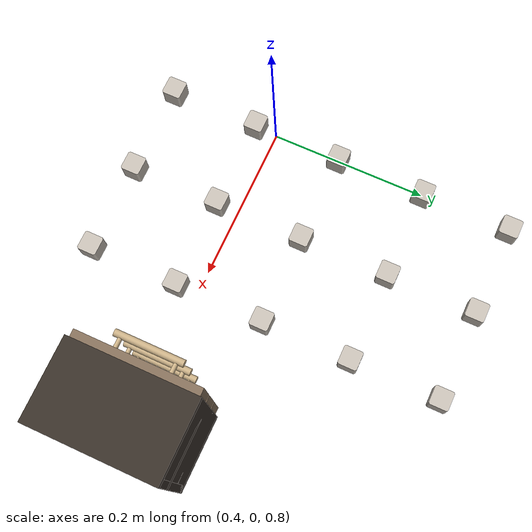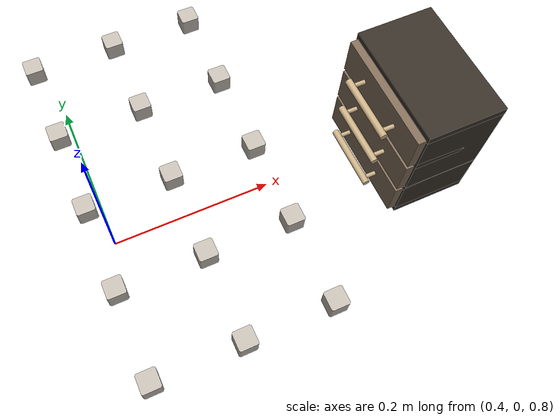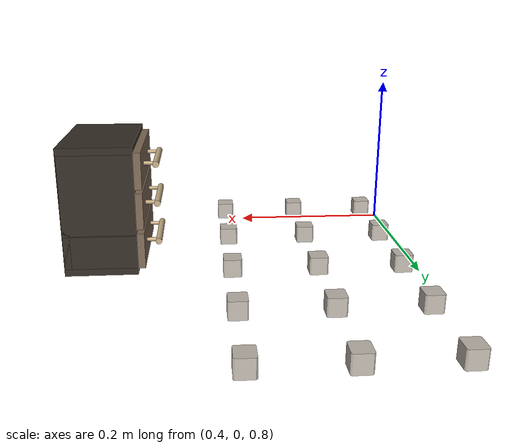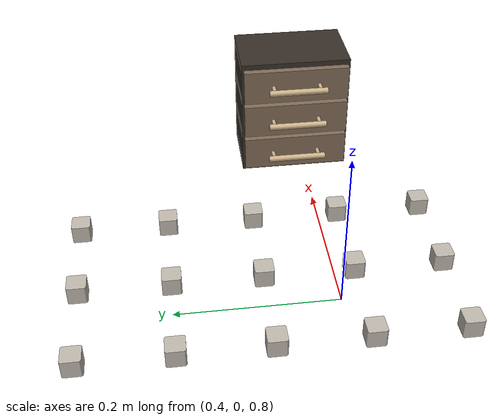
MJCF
<?xml version="1.0" encoding="utf-8"?>
<mujoco model="spell_and_stow_task">
  <compiler angle="radian" meshdir="../assets" texturedir="../assets" />
  <default>
    <default class="yam">
      <position inheritrange="1" />
      <joint frictionloss="0.1" axis="0 0 1" />
      <default class="dm4340">
        <joint armature="0.032" />
        <position kp="40" kv="2.5" forcerange="-28 28" />
      </default>
      <default class="dm4310">
        <joint armature="0.0018" />
        <position kp="10" kv="1" forcerange="-10 10" />
      </default>
      <default class="visual">
        <geom type="mesh" contype="0" conaffinity="0" density="0" group="2" material="black" />
      </default>
      <default class="collision">
        <geom group="3" type="capsule" friction="2.0 0.1 0.01" condim="4" />
        <default class="sphere_collision">
          <geom size="0.0006 0 0" type="sphere" rgba="1 0 0 1" friction="4.0 0.1 0.01" condim="4" solimp="0.998 0.998 0.001" solref="0.004 1" priority="2" />
        </default>
      </default>
      <default class="finger">
        <joint type="slide" armature="0.1" frictionloss="0.1" />
        <position ctrlrange="0.0 0.0495" kp="400" kv="14" inheritrange="0" />
      </default>
    </default>
    <default class="letter_block">
      <geom type="mesh" contype="0" conaffinity="0" density="0" group="1" />
    </default>
    <default class="letter_block_col">
      <geom type="box" size="0.0127 0.0127 0.0127" condim="4" friction="1.0 0.002 0.0002" solref="0.004 1" solimp="0.998 0.998 0.001" priority="1" mass="0.010" group="3" rgba="0 0 0 0" />
    </default>
    <default class="CMC_joint">
      <joint armature="0.0032" damping="4.20E-05" frictionloss="0.132" />
    </default>
    <default class="PCMC_joint">
      <joint armature="0.00012" damping="4.20E-05" frictionloss="0.012" />
    </default>
    <default class="MCP_joint">
      <joint armature="0.00265" damping="2.38E-05" frictionloss="0.07456" />
    </default>
    <default class="PIP_joint">
      <joint armature="0.0006" damping="4.06E-06" frictionloss="0.01276" />
    </default>
    <default class="DIP_joint">
      <joint armature="0.00042" damping="1.21E-06" frictionloss="0.00378738" />
    </default>
    <default class="elastomer_geom">
      <geom solref="0.004 1" friction="3.0 0.1 0.01" priority="2" condim="4" />
    </default>
    <default class="hand_bone">
      <geom friction="1.8 0.03 0.003" priority="2" condim="4" />
    </default>
  </default>
  <contact>
    <exclude body1="right_hand_C_MC" body2="right_thumb_CMC_VL" />
    <exclude body1="right_hand_C_MC" body2="right_hand_C_MC" />
    <exclude body1="right_hand_C_MC" body2="right_thumb_MC" />
    <exclude body1="right_thumb_MC" body2="right_thumb_MCP_VL" />
    <exclude body1="right_thumb_MC" body2="right_thumb_PP" />
    <exclude body1="right_thumb_MCP_VL" body2="right_thumb_PP" />
    <exclude body1="right_thumb_PP" body2="right_thumb_DP" />
    <exclude body1="right_hand_C_MC" body2="right_index_MCP_VL" />
    <exclude body1="right_hand_C_MC" body2="right_index_PP" />
    <exclude body1="right_index_MCP_VL" body2="right_index_PP" />
    <exclude body1="right_index_PP" body2="right_index_MP" />
    <exclude body1="right_index_MP" body2="right_index_DP" />
    <exclude body1="right_hand_C_MC" body2="right_middle_MCP_VL" />
    <exclude body1="right_hand_C_MC" body2="right_middle_PP" />
    <exclude body1="right_middle_MCP_VL" body2="right_middle_PP" />
    <exclude body1="right_middle_PP" body2="right_middle_MP" />
    <exclude body1="right_middle_MP" body2="right_middle_DP" />
    <exclude body1="right_hand_C_MC" body2="right_ring_MCP_VL" />
    <exclude body1="right_hand_C_MC" body2="right_ring_PP" />
    <exclude body1="right_ring_MCP_VL" body2="right_ring_PP" />
    <exclude body1="right_ring_PP" body2="right_ring_MP" />
    <exclude body1="right_ring_MP" body2="right_ring_DP" />
    <exclude body1="right_hand_C_MC" body2="right_pinky_MC" />
    <exclude body1="right_pinky_MC" body2="right_pinky_MCP_VL" />
    <exclude body1="right_pinky_MC" body2="right_pinky_PP" />
    <exclude body1="right_pinky_MCP_VL" body2="right_pinky_PP" />
    <exclude body1="right_pinky_PP" body2="right_pinky_MP" />
    <exclude body1="right_pinky_MP" body2="right_pinky_DP" />
    <exclude body1="left_hand_C_MC" body2="left_thumb_CMC_VL" />
    <exclude body1="left_hand_C_MC" body2="left_hand_C_MC" />
    <exclude body1="left_hand_C_MC" body2="left_thumb_MC" />
    <exclude body1="left_thumb_MC" body2="left_thumb_MCP_VL" />
    <exclude body1="left_thumb_MC" body2="left_thumb_PP" />
    <exclude body1="left_thumb_MCP_VL" body2="left_thumb_PP" />
    <exclude body1="left_thumb_PP" body2="left_thumb_DP" />
    <exclude body1="left_hand_C_MC" body2="left_index_MCP_VL" />
    <exclude body1="left_hand_C_MC" body2="left_index_PP" />
    <exclude body1="left_index_MCP_VL" body2="left_index_PP" />
    <exclude body1="left_index_PP" body2="left_index_MP" />
    <exclude body1="left_index_MP" body2="left_index_DP" />
    <exclude body1="left_hand_C_MC" body2="left_middle_MCP_VL" />
    <exclude body1="left_hand_C_MC" body2="left_middle_PP" />
    <exclude body1="left_middle_MCP_VL" body2="left_middle_PP" />
    <exclude body1="left_middle_PP" body2="left_middle_MP" />
    <exclude body1="left_middle_MP" body2="left_middle_DP" />
    <exclude body1="left_hand_C_MC" body2="left_ring_MCP_VL" />
    <exclude body1="left_hand_C_MC" body2="left_ring_PP" />
    <exclude body1="left_ring_MCP_VL" body2="left_ring_PP" />
    <exclude body1="left_ring_PP" body2="left_ring_MP" />
    <exclude body1="left_ring_MP" body2="left_ring_DP" />
    <exclude body1="left_hand_C_MC" body2="left_pinky_MC" />
    <exclude body1="left_pinky_MC" body2="left_pinky_MCP_VL" />
    <exclude body1="left_pinky_MC" body2="left_pinky_PP" />
    <exclude body1="left_pinky_MCP_VL" body2="left_pinky_PP" />
    <exclude body1="left_pinky_PP" body2="left_pinky_MP" />
    <exclude body1="left_pinky_MP" body2="left_pinky_DP" />
  </contact>
  <asset>
    <texture name="letter_block_tex" type="2d" file="blocks/texture.png" />
    <material name="letter_block_mat" texture="letter_block_tex" specular="0.3" shininess="0.3" />
    <material name="robocasa-cabinet-dark" rgba="0.21 0.18 0.15 1" specular="0.25" shininess="0.25" />
    <material name="robocasa-cabinet-panel" rgba="0.50 0.42 0.34 1" specular="0.35" shininess="0.30" />
    <material name="robocasa-drawer-inside" rgba="0.34 0.31 0.28 1" specular="0.15" shininess="0.18" />
    <material name="robocasa-handle-metal" rgba="0.78 0.68 0.52 1" specular="0.75" shininess="0.65" />
    <mesh name="block_A" file="blocks/block_A.obj" scale="0.127 0.127 0.127" />
    <mesh name="block_B" file="blocks/block_B.obj" scale="0.127 0.127 0.127" />
    <mesh name="block_C" file="blocks/block_C.obj" scale="0.127 0.127 0.127" />
    <mesh name="block_D" file="blocks/block_D.obj" scale="0.127 0.127 0.127" />
    <mesh name="block_E" file="blocks/block_E.obj" scale="0.127 0.127 0.127" />
    <mesh name="block_F" file="blocks/block_F.obj" scale="0.127 0.127 0.127" />
    <mesh name="block_G" file="blocks/block_G.obj" scale="0.127 0.127 0.127" />
    <mesh name="block_H" file="blocks/block_H.obj" scale="0.127 0.127 0.127" />
    <mesh name="block_I" file="blocks/block_I.obj" scale="0.127 0.127 0.127" />
    <mesh name="block_J" file="blocks/block_J.obj" scale="0.127 0.127 0.127" />
    <mesh name="block_K" file="blocks/block_K.obj" scale="0.127 0.127 0.127" />
    <mesh name="block_L" file="blocks/block_L.obj" scale="0.127 0.127 0.127" />
    <mesh name="block_M" file="blocks/block_M.obj" scale="0.127 0.127 0.127" />
    <mesh name="block_N" file="blocks/block_N.obj" scale="0.127 0.127 0.127" />
    <mesh name="block_O" file="blocks/block_O.obj" scale="0.127 0.127 0.127" />
    <texture type="skybox" builtin="gradient" rgb1="1.0 1.0 1.0" rgb2="0.98 0.98 0.98" width="512" height="3072" />
  </asset>
  <worldbody>
    <!-- 3-drawer dresser: outer cabinet 16 x 10 x 18 cm. Generated by scripts/generate_drawer.py — regenerate, do not hand-edit. -->
    <body name="drawer_body" pos="0.8 0 0.75" quat="0.70711 0 0 -0.70711">
      <freejoint name="drawer_body_joint" />
      <inertial pos="0 0 0.09" mass="1" diaginertia="0.00353333 0.00483333 0.00296667" />
      <geom material="robocasa-cabinet-dark" pos="0 0 0.005" size="0.08 0.05 0.005" type="box" group="2" mass="0" contype="0" conaffinity="0" />
      <geom pos="0 0 0.005" size="0.08 0.05 0.005" type="box" group="3" priority="1" friction="1.2 0.01 0.001" condim="4" rgba="0 0 0 0" mass="0" solref="0.004 1" solimp="0.998 0.998 0.001" />
      <geom material="robocasa-cabinet-dark" pos="0 0 0.0616667" size="0.08 0.05 0.005" type="box" group="2" mass="0" contype="0" conaffinity="0" />
      <geom pos="0 0 0.0616667" size="0.08 0.05 0.005" type="box" group="3" priority="1" friction="1.2 0.01 0.001" condim="4" rgba="0 0 0 0" mass="0" solref="0.004 1" solimp="0.998 0.998 0.001" />
      <geom material="robocasa-cabinet-dark" pos="0 0 0.118333" size="0.08 0.05 0.005" type="box" group="2" mass="0" contype="0" conaffinity="0" />
      <geom pos="0 0 0.118333" size="0.08 0.05 0.005" type="box" group="3" priority="1" friction="1.2 0.01 0.001" condim="4" rgba="0 0 0 0" mass="0" solref="0.004 1" solimp="0.998 0.998 0.001" />
      <geom material="robocasa-cabinet-dark" pos="0 0 0.175" size="0.08 0.05 0.005" type="box" group="2" mass="0" contype="0" conaffinity="0" />
      <geom pos="0 0 0.175" size="0.08 0.05 0.005" type="box" group="3" priority="1" friction="1.2 0.01 0.001" condim="4" rgba="0 0 0 0" mass="0" solref="0.004 1" solimp="0.998 0.998 0.001" />
      <geom material="robocasa-cabinet-dark" pos="0 0.045 0.09" size="0.08 0.005 0.08" type="box" group="2" mass="0" contype="0" conaffinity="0" />
      <geom pos="0 0.045 0.09" size="0.08 0.005 0.08" type="box" group="3" priority="1" friction="1.2 0.01 0.001" condim="4" rgba="0 0 0 0" mass="0" solref="0.004 1" solimp="0.998 0.998 0.001" />
      <geom material="robocasa-cabinet-dark" pos="-0.075 0 0.09" size="0.005 0.05 0.08" type="box" group="2" mass="0" contype="0" conaffinity="0" />
      <geom pos="-0.075 0 0.09" size="0.005 0.05 0.08" type="box" group="3" priority="1" friction="1.2 0.01 0.001" condim="4" rgba="0 0 0 0" mass="0" solref="0.004 1" solimp="0.998 0.998 0.001" />
      <geom material="robocasa-cabinet-dark" pos="0.075 0 0.09" size="0.005 0.05 0.08" type="box" group="2" mass="0" contype="0" conaffinity="0" />
      <geom pos="0.075 0 0.09" size="0.005 0.05 0.08" type="box" group="3" priority="1" friction="1.2 0.01 0.001" condim="4" rgba="0 0 0 0" mass="0" solref="0.004 1" solimp="0.998 0.998 0.001" />
      <body name="drawer-slide-bottom" pos="0 0 0.0333333">
        <inertial pos="0 0 0" mass="0.25" diaginertia="0.0012 0.0012 0.0012" />
        <joint type="slide" range="0 0.09" axis="0 -1 0" name="joint_bottom_drawer" pos="0 0 0" damping="6.0" frictionloss="0.18" />
        <geom material="robocasa-drawer-inside" pos="0 0 -0.0153333" size="0.067 0.037 0.005" type="box" group="2" mass="0" contype="0" conaffinity="0" />
        <geom pos="0 0 -0.0153333" size="0.067 0.037 0.005" type="box" group="3" priority="1" friction="1.2 0.01 0.001" condim="4" rgba="0 0 0 0" mass="0" solref="0.004 1" solimp="0.998 0.998 0.001" />
        <geom material="robocasa-drawer-inside" pos="0 0.032 0" size="0.067 0.005 0.0203333" type="box" group="2" mass="0" contype="0" conaffinity="0" />
        <geom pos="0 0.032 0" size="0.067 0.005 0.0203333" type="box" group="3" priority="1" friction="1.2 0.01 0.001" condim="4" rgba="0 0 0 0" mass="0" solref="0.004 1" solimp="0.998 0.998 0.001" />
        <geom material="robocasa-drawer-inside" pos="-0.062 0 0" size="0.005 0.037 0.0203333" type="box" group="2" mass="0" contype="0" conaffinity="0" />
        <geom pos="-0.062 0 0" size="0.005 0.037 0.0203333" type="box" group="3" priority="1" friction="1.2 0.01 0.001" condim="4" rgba="0 0 0 0" mass="0" solref="0.004 1" solimp="0.998 0.998 0.001" />
        <geom material="robocasa-drawer-inside" pos="0.062 0 0" size="0.005 0.037 0.0203333" type="box" group="2" mass="0" contype="0" conaffinity="0" />
        <geom pos="0.062 0 0" size="0.005 0.037 0.0203333" type="box" group="3" priority="1" friction="1.2 0.01 0.001" condim="4" rgba="0 0 0 0" mass="0" solref="0.004 1" solimp="0.998 0.998 0.001" />
        <geom material="robocasa-cabinet-panel" pos="0 -0.055 0" size="0.077 0.005 0.0253333" type="box" group="2" mass="0" contype="0" conaffinity="0" />
        <geom pos="0 -0.055 0" size="0.077 0.005 0.0253333" type="box" group="3" priority="1" friction="1.2 0.01 0.001" condim="4" rgba="0 0 0 0" mass="0" solref="0.004 1" solimp="0.998 0.998 0.001" />
        <geom material="robocasa-handle-metal" euler="0 1.570796 0" pos="0 -0.077 0" size="0.0045 0.04235" type="cylinder" group="2" mass="0" contype="0" conaffinity="0" />
        <geom euler="0 1.570796 0" pos="0 -0.077 0" size="0.0045 0.04235" type="capsule" group="3" priority="1" friction="1.2 0.01 0.001" condim="4" rgba="0 0 0 0" mass="0" solref="0.004 1" solimp="0.998 0.998 0.001" />
        <geom material="robocasa-handle-metal" euler="1.570796 0 0" pos="-0.03388 -0.066 0" size="0.0028 0.012" type="cylinder" group="2" mass="0" contype="0" conaffinity="0" />
        <geom euler="1.570796 0 0" pos="-0.03388 -0.066 0" size="0.0028 0.012" type="capsule" group="3" priority="1" friction="1.2 0.01 0.001" condim="4" rgba="0 0 0 0" mass="0" solref="0.004 1" solimp="0.998 0.998 0.001" />
        <geom material="robocasa-handle-metal" euler="1.570796 0 0" pos="0.03388 -0.066 0" size="0.0028 0.012" type="cylinder" group="2" mass="0" contype="0" conaffinity="0" />
        <geom euler="1.570796 0 0" pos="0.03388 -0.066 0" size="0.0028 0.012" type="capsule" group="3" priority="1" friction="1.2 0.01 0.001" condim="4" rgba="0 0 0 0" mass="0" solref="0.004 1" solimp="0.998 0.998 0.001" />
      </body>
      <body name="drawer-slide-middle" pos="0 0 0.09">
        <inertial pos="0 0 0" mass="0.25" diaginertia="0.0012 0.0012 0.0012" />
        <joint type="slide" range="0 0.09" axis="0 -1 0" name="joint_middle_drawer" pos="0 0 0" damping="6.0" frictionloss="0.18" />
        <geom material="robocasa-drawer-inside" pos="0 0 -0.0153333" size="0.067 0.037 0.005" type="box" group="2" mass="0" contype="0" conaffinity="0" />
        <geom pos="0 0 -0.0153333" size="0.067 0.037 0.005" type="box" group="3" priority="1" friction="1.2 0.01 0.001" condim="4" rgba="0 0 0 0" mass="0" solref="0.004 1" solimp="0.998 0.998 0.001" />
        <geom material="robocasa-drawer-inside" pos="0 0.032 0" size="0.067 0.005 0.0203333" type="box" group="2" mass="0" contype="0" conaffinity="0" />
        <geom pos="0 0.032 0" size="0.067 0.005 0.0203333" type="box" group="3" priority="1" friction="1.2 0.01 0.001" condim="4" rgba="0 0 0 0" mass="0" solref="0.004 1" solimp="0.998 0.998 0.001" />
        <geom material="robocasa-drawer-inside" pos="-0.062 0 0" size="0.005 0.037 0.0203333" type="box" group="2" mass="0" contype="0" conaffinity="0" />
        <geom pos="-0.062 0 0" size="0.005 0.037 0.0203333" type="box" group="3" priority="1" friction="1.2 0.01 0.001" condim="4" rgba="0 0 0 0" mass="0" solref="0.004 1" solimp="0.998 0.998 0.001" />
        <geom material="robocasa-drawer-inside" pos="0.062 0 0" size="0.005 0.037 0.0203333" type="box" group="2" mass="0" contype="0" conaffinity="0" />
        <geom pos="0.062 0 0" size="0.005 0.037 0.0203333" type="box" group="3" priority="1" friction="1.2 0.01 0.001" condim="4" rgba="0 0 0 0" mass="0" solref="0.004 1" solimp="0.998 0.998 0.001" />
        <geom material="robocasa-cabinet-panel" pos="0 -0.055 0" size="0.077 0.005 0.0253333" type="box" group="2" mass="0" contype="0" conaffinity="0" />
        <geom pos="0 -0.055 0" size="0.077 0.005 0.0253333" type="box" group="3" priority="1" friction="1.2 0.01 0.001" condim="4" rgba="0 0 0 0" mass="0" solref="0.004 1" solimp="0.998 0.998 0.001" />
        <geom material="robocasa-handle-metal" euler="0 1.570796 0" pos="0 -0.077 0" size="0.0045 0.04235" type="cylinder" group="2" mass="0" contype="0" conaffinity="0" />
        <geom euler="0 1.570796 0" pos="0 -0.077 0" size="0.0045 0.04235" type="capsule" group="3" priority="1" friction="1.2 0.01 0.001" condim="4" rgba="0 0 0 0" mass="0" solref="0.004 1" solimp="0.998 0.998 0.001" />
        <geom material="robocasa-handle-metal" euler="1.570796 0 0" pos="-0.03388 -0.066 0" size="0.0028 0.012" type="cylinder" group="2" mass="0" contype="0" conaffinity="0" />
        <geom euler="1.570796 0 0" pos="-0.03388 -0.066 0" size="0.0028 0.012" type="capsule" group="3" priority="1" friction="1.2 0.01 0.001" condim="4" rgba="0 0 0 0" mass="0" solref="0.004 1" solimp="0.998 0.998 0.001" />
        <geom material="robocasa-handle-metal" euler="1.570796 0 0" pos="0.03388 -0.066 0" size="0.0028 0.012" type="cylinder" group="2" mass="0" contype="0" conaffinity="0" />
        <geom euler="1.570796 0 0" pos="0.03388 -0.066 0" size="0.0028 0.012" type="capsule" group="3" priority="1" friction="1.2 0.01 0.001" condim="4" rgba="0 0 0 0" mass="0" solref="0.004 1" solimp="0.998 0.998 0.001" />
      </body>
      <body name="drawer-slide-top" pos="0 0 0.146667">
        <inertial pos="0 0 0" mass="0.25" diaginertia="0.0012 0.0012 0.0012" />
        <joint type="slide" range="0 0.09" axis="0 -1 0" name="joint_top_drawer" pos="0 0 0" damping="6.0" frictionloss="0.18" />
        <geom material="robocasa-drawer-inside" pos="0 0 -0.0153333" size="0.067 0.037 0.005" type="box" group="2" mass="0" contype="0" conaffinity="0" />
        <geom pos="0 0 -0.0153333" size="0.067 0.037 0.005" type="box" group="3" priority="1" friction="1.2 0.01 0.001" condim="4" rgba="0 0 0 0" mass="0" solref="0.004 1" solimp="0.998 0.998 0.001" />
        <geom material="robocasa-drawer-inside" pos="0 0.032 0" size="0.067 0.005 0.0203333" type="box" group="2" mass="0" contype="0" conaffinity="0" />
        <geom pos="0 0.032 0" size="0.067 0.005 0.0203333" type="box" group="3" priority="1" friction="1.2 0.01 0.001" condim="4" rgba="0 0 0 0" mass="0" solref="0.004 1" solimp="0.998 0.998 0.001" />
        <geom material="robocasa-drawer-inside" pos="-0.062 0 0" size="0.005 0.037 0.0203333" type="box" group="2" mass="0" contype="0" conaffinity="0" />
        <geom pos="-0.062 0 0" size="0.005 0.037 0.0203333" type="box" group="3" priority="1" friction="1.2 0.01 0.001" condim="4" rgba="0 0 0 0" mass="0" solref="0.004 1" solimp="0.998 0.998 0.001" />
        <geom material="robocasa-drawer-inside" pos="0.062 0 0" size="0.005 0.037 0.0203333" type="box" group="2" mass="0" contype="0" conaffinity="0" />
        <geom pos="0.062 0 0" size="0.005 0.037 0.0203333" type="box" group="3" priority="1" friction="1.2 0.01 0.001" condim="4" rgba="0 0 0 0" mass="0" solref="0.004 1" solimp="0.998 0.998 0.001" />
        <geom material="robocasa-cabinet-panel" pos="0 -0.055 0" size="0.077 0.005 0.0253333" type="box" group="2" mass="0" contype="0" conaffinity="0" />
        <geom pos="0 -0.055 0" size="0.077 0.005 0.0253333" type="box" group="3" priority="1" friction="1.2 0.01 0.001" condim="4" rgba="0 0 0 0" mass="0" solref="0.004 1" solimp="0.998 0.998 0.001" />
        <geom material="robocasa-handle-metal" euler="0 1.570796 0" pos="0 -0.077 0" size="0.0045 0.04235" type="cylinder" group="2" mass="0" contype="0" conaffinity="0" />
        <geom euler="0 1.570796 0" pos="0 -0.077 0" size="0.0045 0.04235" type="capsule" group="3" priority="1" friction="1.2 0.01 0.001" condim="4" rgba="0 0 0 0" mass="0" solref="0.004 1" solimp="0.998 0.998 0.001" />
        <geom material="robocasa-handle-metal" euler="1.570796 0 0" pos="-0.03388 -0.066 0" size="0.0028 0.012" type="cylinder" group="2" mass="0" contype="0" conaffinity="0" />
        <geom euler="1.570796 0 0" pos="-0.03388 -0.066 0" size="0.0028 0.012" type="capsule" group="3" priority="1" friction="1.2 0.01 0.001" condim="4" rgba="0 0 0 0" mass="0" solref="0.004 1" solimp="0.998 0.998 0.001" />
        <geom material="robocasa-handle-metal" euler="1.570796 0 0" pos="0.03388 -0.066 0" size="0.0028 0.012" type="cylinder" group="2" mass="0" contype="0" conaffinity="0" />
        <geom euler="1.570796 0 0" pos="0.03388 -0.066 0" size="0.0028 0.012" type="capsule" group="3" priority="1" friction="1.2 0.01 0.001" condim="4" rgba="0 0 0 0" mass="0" solref="0.004 1" solimp="0.998 0.998 0.001" />
      </body>
    </body>
    <body name="block_A" pos="0.500 0.320 0.760" quat="0.707 0 0.707 0">
      <freejoint name="block_A_jnt" />
      <geom name="block_A_vis" mesh="block_A" material="letter_block_mat" class="letter_block" />
      <geom name="block_A_col" class="letter_block_col" />
    </body>
    <body name="block_B" pos="0.500 0.200 0.760" quat="0.707 0 0.707 0">
      <freejoint name="block_B_jnt" />
      <geom name="block_B_vis" mesh="block_B" material="letter_block_mat" class="letter_block" />
      <geom name="block_B_col" class="letter_block_col" />
    </body>
    <body name="block_C" pos="0.500 0.080 0.760" quat="0.707 0 0.707 0">
      <freejoint name="block_C_jnt" />
      <geom name="block_C_vis" mesh="block_C" material="letter_block_mat" class="letter_block" />
      <geom name="block_C_col" class="letter_block_col" />
    </body>
    <body name="block_D" pos="0.620 0.320 0.760" quat="0.707 0 0.707 0">
      <freejoint name="block_D_jnt" />
      <geom name="block_D_vis" mesh="block_D" material="letter_block_mat" class="letter_block" />
      <geom name="block_D_col" class="letter_block_col" />
    </body>
    <body name="block_E" pos="0.620 0.200 0.760" quat="0.707 0 0.707 0">
      <freejoint name="block_E_jnt" />
      <geom name="block_E_vis" mesh="block_E" material="letter_block_mat" class="letter_block" />
      <geom name="block_E_col" class="letter_block_col" />
    </body>
    <body name="block_F" pos="0.620 0.080 0.760" quat="0.707 0 0.707 0">
      <freejoint name="block_F_jnt" />
      <geom name="block_F_vis" mesh="block_F" material="letter_block_mat" class="letter_block" />
      <geom name="block_F_col" class="letter_block_col" />
    </body>
    <body name="block_G" pos="0.380 0.320 0.760" quat="0.707 0 0.707 0">
      <freejoint name="block_G_jnt" />
      <geom name="block_G_vis" mesh="block_G" material="letter_block_mat" class="letter_block" />
      <geom name="block_G_col" class="letter_block_col" />
    </body>
    <body name="block_H" pos="0.380 0.200 0.760" quat="0.707 0 0.707 0">
      <freejoint name="block_H_jnt" />
      <geom name="block_H_vis" mesh="block_H" material="letter_block_mat" class="letter_block" />
      <geom name="block_H_col" class="letter_block_col" />
    </body>
    <body name="block_I" pos="0.380 0.080 0.760" quat="0.707 0 0.707 0">
      <freejoint name="block_I_jnt" />
      <geom name="block_I_vis" mesh="block_I" material="letter_block_mat" class="letter_block" />
      <geom name="block_I_col" class="letter_block_col" />
    </body>
    <body name="block_J" pos="0.500 -0.040 0.760" quat="0.707 0 0.707 0">
      <freejoint name="block_J_jnt" />
      <geom name="block_J_vis" mesh="block_J" material="letter_block_mat" class="letter_block" />
      <geom name="block_J_col" class="letter_block_col" />
    </body>
    <body name="block_K" pos="0.620 -0.040 0.760" quat="0.707 0 0.707 0">
      <freejoint name="block_K_jnt" />
      <geom name="block_K_vis" mesh="block_K" material="letter_block_mat" class="letter_block" />
      <geom name="block_K_col" class="letter_block_col" />
    </body>
    <body name="block_L" pos="0.380 -0.040 0.760" quat="0.707 0 0.707 0">
      <freejoint name="block_L_jnt" />
      <geom name="block_L_vis" mesh="block_L" material="letter_block_mat" class="letter_block" />
      <geom name="block_L_col" class="letter_block_col" />
    </body>
    <body name="block_M" pos="0.500 -0.160 0.760" quat="0.707 0 0.707 0">
      <freejoint name="block_M_jnt" />
      <geom name="block_M_vis" mesh="block_M" material="letter_block_mat" class="letter_block" />
      <geom name="block_M_col" class="letter_block_col" />
    </body>
    <body name="block_N" pos="0.620 -0.160 0.760" quat="0.707 0 0.707 0">
      <freejoint name="block_N_jnt" />
      <geom name="block_N_vis" mesh="block_N" material="letter_block_mat" class="letter_block" />
      <geom name="block_N_col" class="letter_block_col" />
    </body>
    <body name="block_O" pos="0.380 -0.160 0.760" quat="0.707 0 0.707 0">
      <freejoint name="block_O_jnt" />
      <geom name="block_O_vis" mesh="block_O" material="letter_block_mat" class="letter_block" />
      <geom name="block_O_col" class="letter_block_col" />
    </body>
  </worldbody>
</mujoco>
